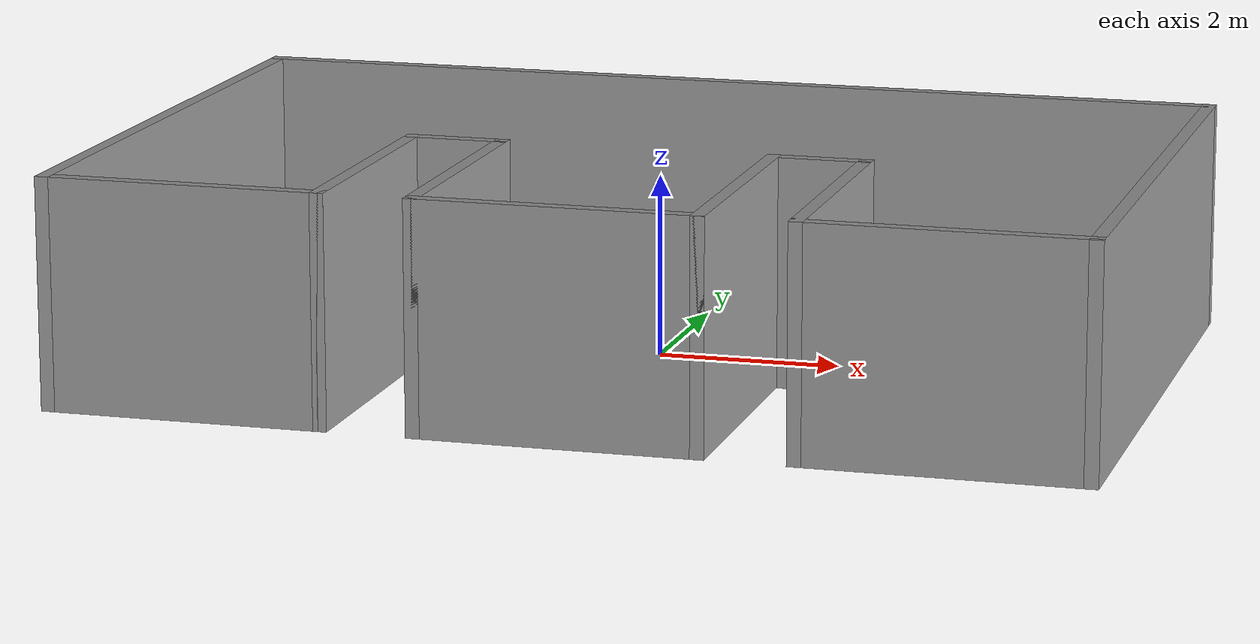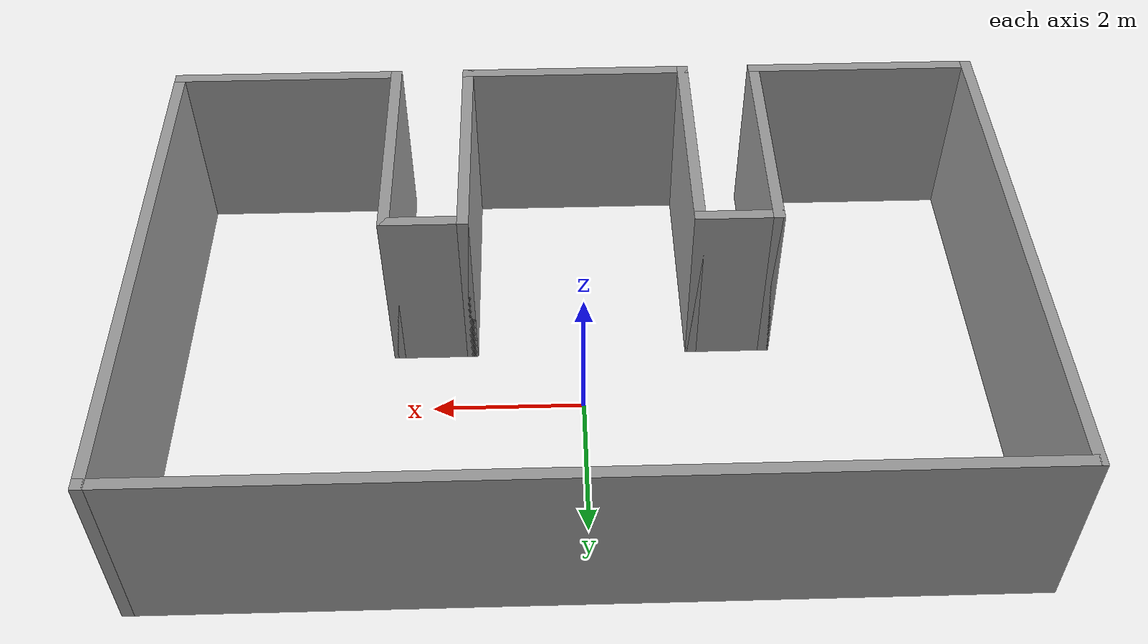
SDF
<?xml version='1.0'?>
<sdf version='1.6'>
  <model name='warehouse'>
    <pose frame=''>0 -0.5 0 0 -0 0</pose>
    <link name='Wall_13'>
      <collision name='Wall_13_Collision'>
        <geometry>
          <box>
            <size>7.15 0.15 2.5</size>
          </box>
        </geometry>
        <pose frame=''>0 0 1.25 0 -0 0</pose>
      </collision>
      <visual name='Wall_13_Visual'>
        <pose frame=''>0 0 1.25 0 -0 0</pose>
        <geometry>
          <box>
            <size>7.15 0.15 2.5</size>
          </box>
        </geometry>
        <material>
          <script>
            <uri>file://media/materials/scripts/gazebo.material</uri>
            <name>Gazebo/Grey</name>
          </script>
          <ambient>1 1 1 1</ambient>
        </material>
        <meta>
          <layer>0</layer>
        </meta>
      </visual>
      <pose frame=''>-5.5 0 0 0 -0 -1.5708</pose>
    </link>
    <link name='Wall_14'>
      <collision name='Wall_14_Collision'>
        <geometry>
          <box>
            <size>3.15 0.15 2.5</size>
          </box>
        </geometry>
        <pose frame=''>0 0 1.25 0 -0 0</pose>
      </collision>
      <visual name='Wall_14_Visual'>
        <pose frame=''>0 0 1.25 0 -0 0</pose>
        <geometry>
          <box>
            <size>3.15 0.15 2.5</size>
          </box>
        </geometry>
        <material>
          <script>
            <uri>file://media/materials/scripts/gazebo.material</uri>
            <name>Gazebo/Grey</name>
          </script>
          <ambient>1 1 1 1</ambient>
        </material>
        <meta>
          <layer>0</layer>
        </meta>
      </visual>
      <pose frame=''>-4 -3.5 0 0 -0 0</pose>
    </link>
    <link name='Wall_15'>
      <collision name='Wall_15_Collision'>
        <geometry>
          <box>
            <size>3.15 0.15 2.5</size>
          </box>
        </geometry>
        <pose frame=''>0 0 1.25 0 -0 0</pose>
      </collision>
      <visual name='Wall_15_Visual'>
        <pose frame=''>0 0 1.25 0 -0 0</pose>
        <geometry>
          <box>
            <size>3.15 0.15 2.5</size>
          </box>
        </geometry>
        <material>
          <script>
            <uri>file://media/materials/scripts/gazebo.material</uri>
            <name>Gazebo/Grey</name>
          </script>
          <ambient>1 1 1 1</ambient>
        </material>
        <meta>
          <layer>0</layer>
        </meta>
      </visual>
      <pose frame=''>-2.5 -2 0 0 -0 1.5708</pose>
    </link>
    <link name='Wall_16'>
      <collision name='Wall_16_Collision'>
        <geometry>
          <box>
            <size>1.15 0.15 2.5</size>
          </box>
        </geometry>
        <pose frame=''>0 0 1.25 0 -0 0</pose>
      </collision>
      <visual name='Wall_16_Visual'>
        <pose frame=''>0 0 1.25 0 -0 0</pose>
        <geometry>
          <box>
            <size>1.15 0.15 2.5</size>
          </box>
        </geometry>
        <material>
          <script>
            <uri>file://media/materials/scripts/gazebo.material</uri>
            <name>Gazebo/Grey</name>
          </script>
          <ambient>1 1 1 1</ambient>
        </material>
        <meta>
          <layer>0</layer>
        </meta>
      </visual>
      <pose frame=''>-2 -0.5 0 0 -0 0</pose>
    </link>
    <link name='Wall_17'>
      <collision name='Wall_17_Collision'>
        <geometry>
          <box>
            <size>3.15 0.15 2.5</size>
          </box>
        </geometry>
        <pose frame=''>0 0 1.25 0 -0 0</pose>
      </collision>
      <visual name='Wall_17_Visual'>
        <pose frame=''>0 0 1.25 0 -0 0</pose>
        <geometry>
          <box>
            <size>3.15 0.15 2.5</size>
          </box>
        </geometry>
        <material>
          <script>
            <uri>file://media/materials/scripts/gazebo.material</uri>
            <name>Gazebo/Grey</name>
          </script>
          <ambient>1 1 1 1</ambient>
        </material>
        <meta>
          <layer>0</layer>
        </meta>
      </visual>
      <pose frame=''>-1.5 -2 0 0 -0 -1.5708</pose>
    </link>
    <link name='Wall_18'>
      <collision name='Wall_18_Collision'>
        <geometry>
          <box>
            <size>3.15 0.15 2.5</size>
          </box>
        </geometry>
        <pose frame=''>0 0 1.25 0 -0 0</pose>
      </collision>
      <visual name='Wall_18_Visual'>
        <pose frame=''>0 0 1.25 0 -0 0</pose>
        <geometry>
          <box>
            <size>3.15 0.15 2.5</size>
          </box>
        </geometry>
        <material>
          <script>
            <uri>file://media/materials/scripts/gazebo.material</uri>
            <name>Gazebo/Grey</name>
          </script>
          <ambient>1 1 1 1</ambient>
        </material>
        <meta>
          <layer>0</layer>
        </meta>
      </visual>
      <pose frame=''>0 -3.5 0 0 -0 0</pose>
    </link>
    <link name='Wall_19'>
      <collision name='Wall_19_Collision'>
        <geometry>
          <box>
            <size>3.15 0.15 2.5</size>
          </box>
        </geometry>
        <pose frame=''>0 0 1.25 0 -0 0</pose>
      </collision>
      <visual name='Wall_19_Visual'>
        <pose frame=''>0 0 1.25 0 -0 0</pose>
        <geometry>
          <box>
            <size>3.15 0.15 2.5</size>
          </box>
        </geometry>
        <material>
          <script>
            <uri>file://media/materials/scripts/gazebo.material</uri>
            <name>Gazebo/Grey</name>
          </script>
          <ambient>1 1 1 1</ambient>
        </material>
        <meta>
          <layer>0</layer>
        </meta>
      </visual>
      <pose frame=''>1.5 -2 0 0 -0 1.5708</pose>
    </link>
    <link name='Wall_20'>
      <collision name='Wall_20_Collision'>
        <geometry>
          <box>
            <size>1.15 0.15 2.5</size>
          </box>
        </geometry>
        <pose frame=''>0 0 1.25 0 -0 0</pose>
      </collision>
      <visual name='Wall_20_Visual'>
        <pose frame=''>0 0 1.25 0 -0 0</pose>
        <geometry>
          <box>
            <size>1.15 0.15 2.5</size>
          </box>
        </geometry>
        <material>
          <script>
            <uri>file://media/materials/scripts/gazebo.material</uri>
            <name>Gazebo/Grey</name>
          </script>
          <ambient>1 1 1 1</ambient>
        </material>
        <meta>
          <layer>0</layer>
        </meta>
      </visual>
      <pose frame=''>2 -0.5 0 0 -0 0</pose>
    </link>
    <link name='Wall_21'>
      <collision name='Wall_21_Collision'>
        <geometry>
          <box>
            <size>3.15 0.15 2.5</size>
          </box>
        </geometry>
        <pose frame=''>0 0 1.25 0 -0 0</pose>
      </collision>
      <visual name='Wall_21_Visual'>
        <pose frame=''>0 0 1.25 0 -0 0</pose>
        <geometry>
          <box>
            <size>3.15 0.15 2.5</size>
          </box>
        </geometry>
        <material>
          <script>
            <uri>file://media/materials/scripts/gazebo.material</uri>
            <name>Gazebo/Grey</name>
          </script>
          <ambient>1 1 1 1</ambient>
        </material>
        <meta>
          <layer>0</layer>
        </meta>
      </visual>
      <pose frame=''>2.5 -2 0 0 -0 -1.5708</pose>
    </link>
    <link name='Wall_22'>
      <collision name='Wall_22_Collision'>
        <geometry>
          <box>
            <size>3.15 0.15 2.5</size>
          </box>
        </geometry>
        <pose frame=''>0 0 1.25 0 -0 0</pose>
      </collision>
      <visual name='Wall_22_Visual'>
        <pose frame=''>0 0 1.25 0 -0 0</pose>
        <geometry>
          <box>
            <size>3.15 0.15 2.5</size>
          </box>
        </geometry>
        <material>
          <script>
            <uri>file://media/materials/scripts/gazebo.material</uri>
            <name>Gazebo/Grey</name>
          </script>
          <ambient>1 1 1 1</ambient>
        </material>
        <meta>
          <layer>0</layer>
        </meta>
      </visual>
      <pose frame=''>4 -3.5 0 0 -0 0</pose>
    </link>
    <link name='Wall_23'>
      <collision name='Wall_23_Collision'>
        <geometry>
          <box>
            <size>7.15 0.15 2.5</size>
          </box>
        </geometry>
        <pose frame=''>0 0 1.25 0 -0 0</pose>
      </collision>
      <visual name='Wall_23_Visual'>
        <pose frame=''>0 0 1.25 0 -0 0</pose>
        <geometry>
          <box>
            <size>7.15 0.15 2.5</size>
          </box>
        </geometry>
        <material>
          <script>
            <uri>file://media/materials/scripts/gazebo.material</uri>
            <name>Gazebo/Grey</name>
          </script>
          <ambient>1 1 1 1</ambient>
        </material>
        <meta>
          <layer>0</layer>
        </meta>
      </visual>
      <pose frame=''>5.5 0 0 0 -0 1.5708</pose>
    </link>
    <link name='Wall_24'>
      <collision name='Wall_24_Collision'>
        <geometry>
          <box>
            <size>11.15 0.15 2.5</size>
          </box>
        </geometry>
        <pose frame=''>0 0 1.25 0 -0 0</pose>
      </collision>
      <visual name='Wall_24_Visual'>
        <pose frame=''>0 0 1.25 0 -0 0</pose>
        <geometry>
          <box>
            <size>11.15 0.15 2.5</size>
          </box>
        </geometry>
        <material>
          <script>
            <uri>file://media/materials/scripts/gazebo.material</uri>
            <name>Gazebo/Grey</name>
          </script>
          <ambient>1 1 1 1</ambient>
        </material>
        <meta>
          <layer>0</layer>
        </meta>
      </visual>
      <pose frame=''>0 3.5 0 0 -0 3.14159</pose>
    </link>
    <static>1</static>
  </model>
</sdf>
